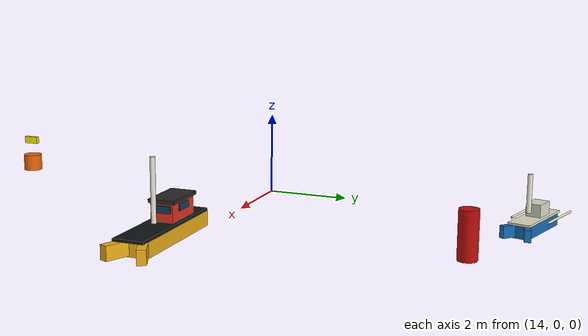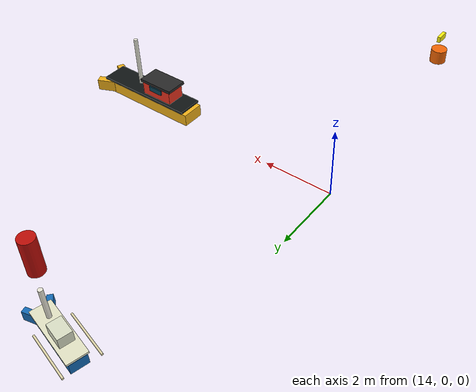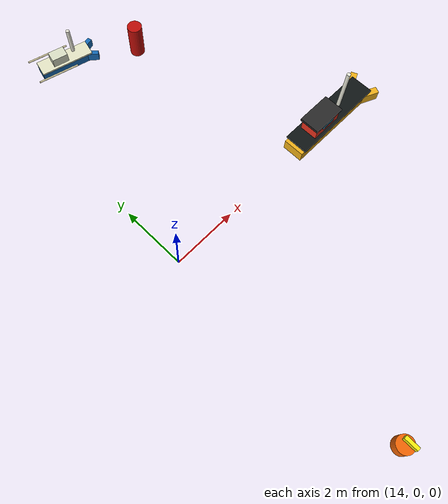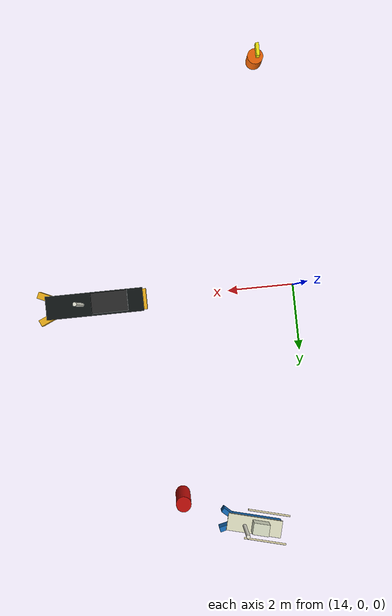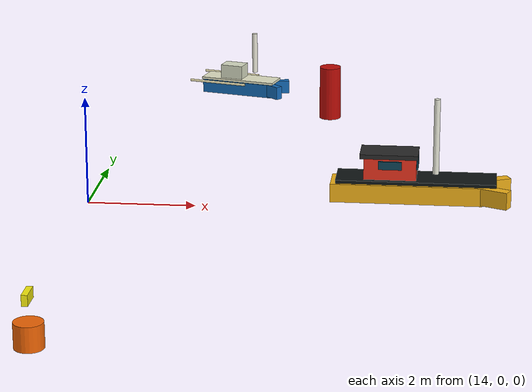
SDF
<sdf version="1.7">
 <world name="ocean_fog">
  <model name="moving_vessel">
   <static>false</static>
   <pose>20 0 0.42 0 0 0</pose>
   <link name="hull">
    <gravity>false</gravity>
    <velocity_decay><linear>0.22</linear><angular>0.35</angular></velocity_decay>
    <inertial>
     <mass>80</mass>
     <inertia><ixx>18</ixx><ixy>0</ixy><ixz>0</ixz><iyy>55</iyy><iyz>0</iyz><izz>60</izz></inertia>
    </inertial>
    <visual name="hull_visual">
     <pose>-0.12 0 0.02 0 0 0</pose>
     <geometry><box><size>2.75 0.62 0.34</size></box></geometry>
     <material><ambient>0.78 0.54 0.09 1</ambient><diffuse>0.95 0.70 0.10 1</diffuse></material>
    </visual>
    <visual name="bow_port_visual">
     <pose>1.30 0.24 0.03 0 0 0.42</pose>
     <geometry><box><size>0.92 0.20 0.32</size></box></geometry>
     <material><ambient>0.78 0.54 0.09 1</ambient><diffuse>0.95 0.70 0.10 1</diffuse></material>
    </visual>
    <visual name="bow_starboard_visual">
     <pose>1.30 -0.24 0.03 0 0 -0.42</pose>
     <geometry><box><size>0.92 0.20 0.32</size></box></geometry>
     <material><ambient>0.78 0.54 0.09 1</ambient><diffuse>0.95 0.70 0.10 1</diffuse></material>
    </visual>
    <visual name="rub_rail_visual">
     <pose>0.05 0 0.25 0 0 0</pose>
     <geometry><box><size>2.90 0.70 0.06</size></box></geometry>
     <material><ambient>0.06 0.08 0.08 1</ambient><diffuse>0.06 0.08 0.08 1</diffuse></material>
    </visual>
    <visual name="cabin_visual">
     <pose>-0.42 0 0.48 0 0 0</pose>
     <geometry><box><size>0.95 0.52 0.40</size></box></geometry>
     <material><ambient>0.86 0.16 0.10 1</ambient><diffuse>0.92 0.20 0.12 1</diffuse></material>
    </visual>
    <visual name="window_front_visual">
     <pose>0.07 0 0.56 0 0 0</pose>
     <geometry><box><size>0.035 0.44 0.16</size></box></geometry>
     <material><ambient>0.03 0.12 0.18 1</ambient><diffuse>0.05 0.26 0.34 1</diffuse></material>
    </visual>
    <visual name="window_port_visual">
     <pose>-0.42 0.275 0.56 0 0 0</pose>
     <geometry><box><size>0.42 0.035 0.15</size></box></geometry>
     <material><ambient>0.03 0.12 0.18 1</ambient><diffuse>0.05 0.26 0.34 1</diffuse></material>
    </visual>
    <visual name="window_starboard_visual">
     <pose>-0.42 -0.275 0.56 0 0 0</pose>
     <geometry><box><size>0.42 0.035 0.15</size></box></geometry>
     <material><ambient>0.03 0.12 0.18 1</ambient><diffuse>0.05 0.26 0.34 1</diffuse></material>
    </visual>
    <visual name="cabin_roof_visual">
     <pose>-0.44 0 0.72 0 0 0</pose>
     <geometry><box><size>1.05 0.60 0.08</size></box></geometry>
     <material><ambient>0.12 0.12 0.12 1</ambient><diffuse>0.16 0.16 0.16 1</diffuse></material>
    </visual>
    <visual name="radar_reflector_visual">
     <pose>0.4 0 1.05 0 0 0</pose>
     <geometry><cylinder><radius>0.055</radius><length>1.4</length></cylinder></geometry>
     <material><ambient>0.92 0.92 0.86 1</ambient><diffuse>0.92 0.92 0.86 1</diffuse></material>
    </visual>
    <collision name="hull_collision">
     <pose>0 0 -0.18 0 0 0</pose>
     <geometry><box><size>2.4 0.75 0.65</size></box></geometry>
    </collision>
    <collision name="radar_reflector_collision">
     <pose>0.4 0 1.05 0 0 0</pose>
     <geometry><box><size>0.28 0.28 1.8</size></box></geometry>
    </collision>
   </link>
  </model>
  <model name="small_fishing_boat">
   <static>false</static>
   <pose>16 7 0.34 0 0 -0.25</pose>
   <link name="hull">
    <gravity>false</gravity>
    <velocity_decay><linear>0.28</linear><angular>0.40</angular></velocity_decay>
    <inertial>
     <mass>42</mass>
     <inertia><ixx>8</ixx><ixy>0</ixy><ixz>0</ixz><iyy>25</iyy><iyz>0</iyz><izz>28</izz></inertia>
    </inertial>
    <visual name="hull_visual">
     <pose>-0.05 0 0.00 0 0 0</pose>
     <geometry><box><size>1.55 0.42 0.28</size></box></geometry>
     <material><ambient>0.08 0.42 0.72 1</ambient><diffuse>0.08 0.42 0.72 1</diffuse></material>
    </visual>
    <visual name="bow_port_visual">
     <pose>0.72 0.17 0.02 0 0 0.48</pose>
     <geometry><box><size>0.56 0.14 0.27</size></box></geometry>
     <material><ambient>0.08 0.42 0.72 1</ambient><diffuse>0.08 0.42 0.72 1</diffuse></material>
    </visual>
    <visual name="bow_starboard_visual">
     <pose>0.72 -0.17 0.02 0 0 -0.48</pose>
     <geometry><box><size>0.56 0.14 0.27</size></box></geometry>
     <material><ambient>0.08 0.42 0.72 1</ambient><diffuse>0.08 0.42 0.72 1</diffuse></material>
    </visual>
    <visual name="gunwale_visual">
     <pose>-0.02 0 0.18 0 0 0</pose>
     <geometry><box><size>1.62 0.50 0.05</size></box></geometry>
     <material><ambient>0.90 0.90 0.78 1</ambient><diffuse>0.90 0.90 0.78 1</diffuse></material>
    </visual>
    <visual name="cabin_visual">
     <pose>-0.18 0 0.34 0 0 0</pose>
     <geometry><box><size>0.48 0.34 0.30</size></box></geometry>
     <material><ambient>0.86 0.88 0.78 1</ambient><diffuse>0.86 0.88 0.78 1</diffuse></material>
    </visual>
    <visual name="net_frame_port_visual">
     <pose>-0.40 0.42 0.16 0 1.5708 0</pose>
     <geometry><cylinder><radius>0.025</radius><length>1.25</length></cylinder></geometry>
     <material><ambient>0.90 0.86 0.68 1</ambient><diffuse>0.90 0.86 0.68 1</diffuse></material>
    </visual>
    <visual name="net_frame_starboard_visual">
     <pose>-0.40 -0.42 0.16 0 1.5708 0</pose>
     <geometry><cylinder><radius>0.025</radius><length>1.25</length></cylinder></geometry>
     <material><ambient>0.90 0.86 0.68 1</ambient><diffuse>0.90 0.86 0.68 1</diffuse></material>
    </visual>
    <visual name="reflector_visual">
     <pose>0.30 0 0.78 0 0 0</pose>
     <geometry><cylinder><radius>0.055</radius><length>0.85</length></cylinder></geometry>
     <material><ambient>0.93 0.92 0.86 1</ambient><diffuse>0.93 0.92 0.86 1</diffuse></material>
    </visual>
    <collision name="hull_collision"><geometry><box><size>1.55 0.48 0.48</size></box></geometry></collision>
    <collision name="reflector_collision">
     <pose>0.30 0 0.78 0 0 0</pose>
     <geometry><cylinder><radius>0.09</radius><length>1.05</length></cylinder></geometry>
    </collision>
   </link>
  </model>
  <model name="fishnet_buoy">
   <static>false</static>
   <pose>14.5 -7 0.30 0 0 0</pose>
   <link name="body">
    <gravity>false</gravity>
    <velocity_decay><linear>0.40</linear><angular>0.50</angular></velocity_decay>
    <inertial>
     <mass>10</mass>
     <inertia><ixx>1.2</ixx><ixy>0</ixy><ixz>0</ixz><iyy>1.2</iyy><iyz>0</iyz><izz>1.2</izz></inertia>
    </inertial>
    <visual name="body_visual">
     <geometry><cylinder><radius>0.24</radius><length>0.42</length></cylinder></geometry>
     <material><ambient>0.95 0.40 0.02 1</ambient><diffuse>0.95 0.40 0.02 1</diffuse></material>
    </visual>
    <visual name="flag_visual">
     <pose>0 0 0.62 0 0 0</pose>
     <geometry><box><size>0.10 0.38 0.18</size></box></geometry>
     <material><ambient>0.98 0.94 0.05 1</ambient><diffuse>0.98 0.94 0.05 1</diffuse></material>
    </visual>
    <collision name="body_collision">
     <geometry><cylinder><radius>0.24</radius><length>0.42</length></cylinder></geometry>
    </collision>
    <collision name="flag_collision">
     <pose>0 0 0.62 0 0 0</pose>
     <geometry><box><size>0.14 0.42 0.22</size></box></geometry>
    </collision>
   </link>
  </model>
  <model name="navigation_marker_port">
   <static>true</static>
   <pose>18 6 0.55 0 0 0</pose>
   <link name="link">
    <visual name="body">
     <geometry><cylinder><radius>0.22</radius><length>1.1</length></cylinder></geometry>
     <material><ambient>0.75 0.05 0.03 1</ambient><diffuse>0.75 0.05 0.03 1</diffuse></material>
    </visual>
   </link>
  </model>
 </world>
</sdf>
